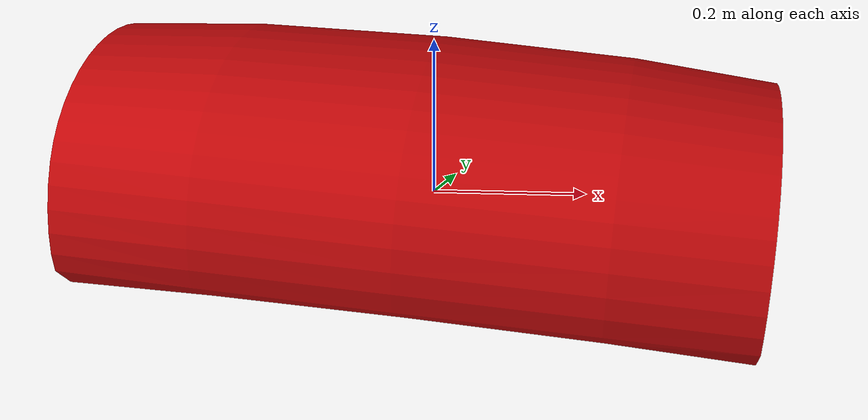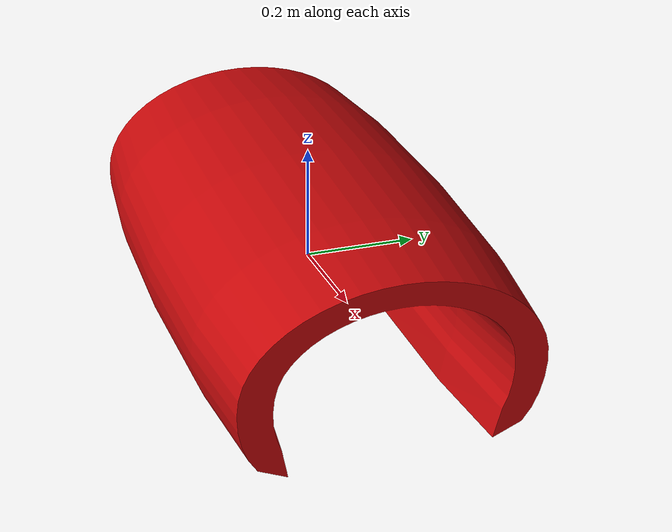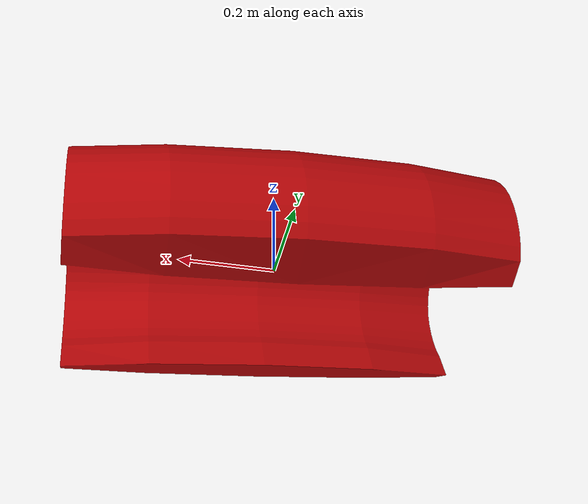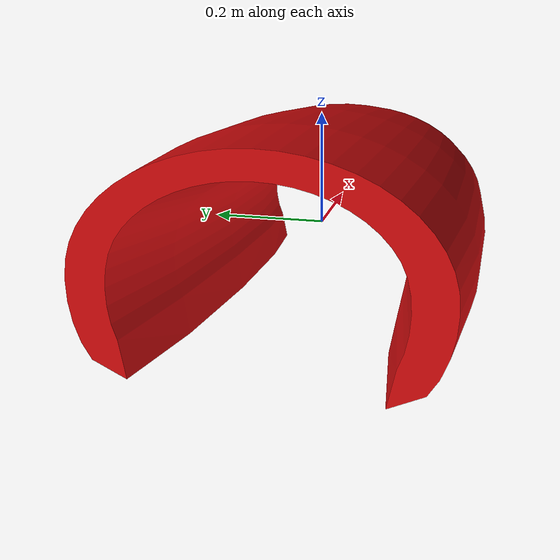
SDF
<?xml version="1.0"?>
<sdf version="1.4">
  <model name="tunnel">
    <static>true</static>
    <link name="link">
      <collision name="collision">
        <pose>0 0 0 0 0 -1.57</pose>
        <geometry>
          <mesh>
            <uri>model://tunnel/meshes/tunnel.dae</uri>
            <scale>20.0 20.0 20.0</scale>
            <normal>0 0 1</normal>
          </mesh>
        </geometry>
        <surface>
          <friction>
            <ode>
              <mu>100</mu>
              <mu2>100</mu2>
            </ode>
          </friction>
        </surface>
      </collision>
      <visual name="visual">
        <pose>0 0 0 0 0 -1.57</pose>
        <cast_shadows>false</cast_shadows>
        <geometry>
          <mesh>
            <uri>model://tunnel/meshes/tunnel.dae</uri>
            <scale>20.0 20.0 20.0</scale>
            <normal>0 0 1</normal>
          </mesh>
        </geometry>
        <material>
          <script>
            <uri>model://tunnel/materials/scripts</uri>
            <uri>model://tunnel/materials/textures</uri>
            <name>tunnel</name>
          </script>
        </material>
      </visual>
    </link>
  </model>
</sdf>
